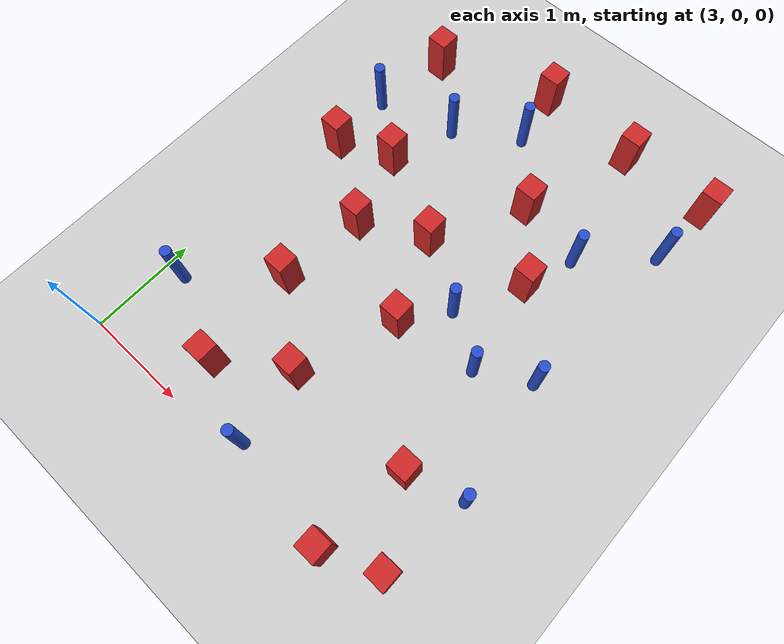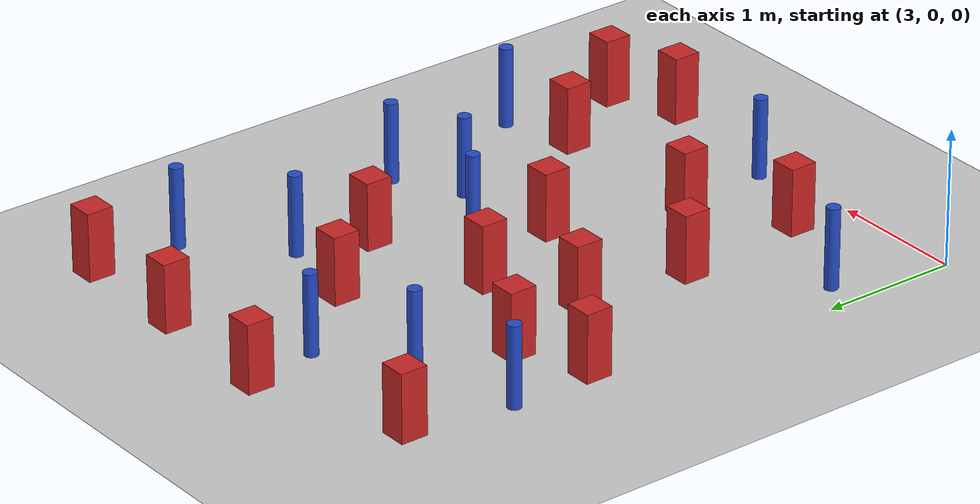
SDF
<sdf version="1.6">
 <world name="default">
  <model name="ground_plane">
   <static>1</static>
   <link name="link">
    <collision name="collision">
     <geometry><plane><normal>0 0 1</normal><size>100 100</size></plane></geometry>
     <surface><friction><ode><mu>100</mu><mu2>50</mu2></ode></friction></surface>
    </collision>
    <visual name="visual">
     <cast_shadows>0</cast_shadows>
     <geometry><plane><normal>0 0 1</normal><size>100 100</size></plane></geometry>
     <material>
      <ambient>1.0 1.0 1.0 1.0</ambient>
      <diffuse>0.8 0.8 0.8 1.0</diffuse>
      <specular>0.01 0.01 0.01 1.000000</specular>
     </material>
    </visual>
   </link>
  </model>
  <model name="pole_obstacle5">
   <static>true</static>
   <pose>4.59534983263 4.0228984966 7.38925637345e-09 -8.47170692797e-08 1.24976764805e-08 -1.74513093031e-07</pose>
   <link name="link">
    <pose>0 0 0.3 0 -0 0</pose>
    <inertial>
     <mass>1</mass>
     <inertia><ixx>0.145833</ixx><ixy>0</ixy><ixz>0</ixz><iyy>0.145833</iyy><iyz>0</iyz><izz>0.125</izz></inertia>
    </inertial>
    <collision name="collision">
     <geometry><cylinder><radius>0.05</radius><length>.6</length></cylinder></geometry>
    </collision>
    <visual name="visual">
     <geometry><cylinder><radius>0.05</radius><length>.6</length></cylinder></geometry>
     <material>
      <script><name>Gazebo/Blue</name><uri>file://media/materials/scripts/gazebo.material</uri></script>
     </material>
    </visual>
   </link>
  </model>
  <model name="square_post_obstacle17">
   <static>true</static>
   <pose>5.48721667953 4.50802966469 1.91545236811e-07 -7.35059704564e-06 1.12565212e-07 2.39332434364e-05</pose>
   <link name="link">
    <pose>0 0 0.25 0 -0 0</pose>
    <inertial>
     <mass>100</mass>
     <inertia>
      <ixx>0.166667</ixx>
      <ixy>0</ixy>
      <ixz>0</ixz>
      <iyy>0.166667</iyy>
      <iyz>0</iyz>
      <izz>0.166667</izz>
     </inertia>
    </inertial>
    <collision name="collision"><geometry><box><size>.2 .2 .5</size></box></geometry></collision>
    <visual name="visual">
     <geometry><box><size>.2 .2 .5</size></box></geometry>
     <material>
      <script><name>Gazebo/Red</name><uri>file://media/materials/scripts/gazebo.material</uri></script>
     </material>
    </visual>
   </link>
  </model>
  <model name="square_post_obstacle18">
   <static>true</static>
   <pose>4.50338744561 4.55315479538 1.91545236811e-07 -7.35059704564e-06 1.12565212e-07 2.39332434364e-05</pose>
   <link name="link">
    <pose>0 0 0.25 0 -0 0</pose>
    <inertial>
     <mass>100</mass>
     <inertia>
      <ixx>0.166667</ixx>
      <ixy>0</ixy>
      <ixz>0</ixz>
      <iyy>0.166667</iyy>
      <iyz>0</iyz>
      <izz>0.166667</izz>
     </inertia>
    </inertial>
    <collision name="collision"><geometry><box><size>.2 .2 .5</size></box></geometry></collision>
    <visual name="visual">
     <geometry><box><size>.2 .2 .5</size></box></geometry>
     <material>
      <script><name>Gazebo/Red</name><uri>file://media/materials/scripts/gazebo.material</uri></script>
     </material>
    </visual>
   </link>
  </model>
  <model name="pole_obstacle74">
   <static>true</static>
   <pose>3.25864597976 3.4138214126 7.38925637345e-09 -8.47170692798e-08 1.24976764939e-08 -1.74513093025e-07</pose>
   <link name="link">
    <pose>0 0 0.3 0 -0 0</pose>
    <inertial>
     <mass>1</mass>
     <inertia><ixx>0.145833</ixx><ixy>0</ixy><ixz>0</ixz><iyy>0.145833</iyy><iyz>0</iyz><izz>0.125</izz></inertia>
    </inertial>
    <collision name="collision">
     <geometry><cylinder><radius>0.05</radius><length>.6</length></cylinder></geometry>
    </collision>
    <visual name="visual">
     <geometry><cylinder><radius>0.05</radius><length>.6</length></cylinder></geometry>
     <material>
      <script><name>Gazebo/Blue</name><uri>file://media/materials/scripts/gazebo.material</uri></script>
     </material>
    </visual>
   </link>
  </model>
  <model name="pole_obstacle83">
   <static>true</static>
   <pose>4.7419789741 0.147731783757 7.38925637345e-09 -8.47170692801e-08 1.24976765186e-08 -1.74513093012e-07</pose>
   <link name="link">
    <pose>0 0 0.3 0 -0 0</pose>
    <inertial>
     <mass>1</mass>
     <inertia><ixx>0.145833</ixx><ixy>0</ixy><ixz>0</ixz><iyy>0.145833</iyy><iyz>0</iyz><izz>0.125</izz></inertia>
    </inertial>
    <collision name="collision">
     <geometry><cylinder><radius>0.05</radius><length>.6</length></cylinder></geometry>
    </collision>
    <visual name="visual">
     <geometry><cylinder><radius>0.05</radius><length>.6</length></cylinder></geometry>
     <material>
      <script><name>Gazebo/Blue</name><uri>file://media/materials/scripts/gazebo.material</uri></script>
     </material>
    </visual>
   </link>
  </model>
  <model name="square_post_obstacle92">
   <static>true</static>
   <pose>5.8972531947 0.875745982359 1.91545236811e-07 -7.35059704564e-06 1.12565212e-07 2.39332434364e-05</pose>
   <link name="link">
    <pose>0 0 0.25 0 -0 0</pose>
    <inertial>
     <mass>100</mass>
     <inertia>
      <ixx>0.166667</ixx>
      <ixy>0</ixy>
      <ixz>0</ixz>
      <iyy>0.166667</iyy>
      <iyz>0</iyz>
      <izz>0.166667</izz>
     </inertia>
    </inertial>
    <collision name="collision"><geometry><box><size>.2 .2 .5</size></box></geometry></collision>
    <visual name="visual">
     <geometry><box><size>.2 .2 .5</size></box></geometry>
     <material>
      <script><name>Gazebo/Red</name><uri>file://media/materials/scripts/gazebo.material</uri></script>
     </material>
    </visual>
   </link>
  </model>
  <model name="pole_obstacle108">
   <static>true</static>
   <pose>6.33394868923 3.84851165685 7.38925637345e-09 -8.47170692798e-08 1.24976764937e-08 -1.74513093023e-07</pose>
   <link name="link">
    <pose>0 0 0.3 0 -0 0</pose>
    <inertial>
     <mass>1</mass>
     <inertia><ixx>0.145833</ixx><ixy>0</ixy><ixz>0</ixz><iyy>0.145833</iyy><iyz>0</iyz><izz>0.125</izz></inertia>
    </inertial>
    <collision name="collision">
     <geometry><cylinder><radius>0.05</radius><length>.6</length></cylinder></geometry>
    </collision>
    <visual name="visual">
     <geometry><cylinder><radius>0.05</radius><length>.6</length></cylinder></geometry>
     <material>
      <script><name>Gazebo/Blue</name><uri>file://media/materials/scripts/gazebo.material</uri></script>
     </material>
    </visual>
   </link>
  </model>
  <model name="square_post_obstacle97">
   <static>true</static>
   <pose>3.40601405111 4.16479973151 1.91545236811e-07 -7.35059704564e-06 1.12565212e-07 2.39332434364e-05</pose>
   <link name="link">
    <pose>0 0 0.25 0 -0 0</pose>
    <inertial>
     <mass>100</mass>
     <inertia>
      <ixx>0.166667</ixx>
      <ixy>0</ixy>
      <ixz>0</ixz>
      <iyy>0.166667</iyy>
      <iyz>0</iyz>
      <izz>0.166667</izz>
     </inertia>
    </inertial>
    <collision name="collision"><geometry><box><size>.2 .2 .5</size></box></geometry></collision>
    <visual name="visual">
     <geometry><box><size>.2 .2 .5</size></box></geometry>
     <material>
      <script><name>Gazebo/Red</name><uri>file://media/materials/scripts/gazebo.material</uri></script>
     </material>
    </visual>
   </link>
  </model>
  <model name="pole_obstacle118">
   <static>true</static>
   <pose>3.22946974129 0.804600885479 7.38925637345e-09 -8.471706928e-08 1.24976765177e-08 -1.74513093012e-07</pose>
   <link name="link">
    <pose>0 0 0.3 0 -0 0</pose>
    <inertial>
     <mass>1</mass>
     <inertia><ixx>0.145833</ixx><ixy>0</ixy><ixz>0</ixz><iyy>0.145833</iyy><iyz>0</iyz><izz>0.125</izz></inertia>
    </inertial>
    <collision name="collision">
     <geometry><cylinder><radius>0.05</radius><length>.6</length></cylinder></geometry>
    </collision>
    <visual name="visual">
     <geometry><cylinder><radius>0.05</radius><length>.6</length></cylinder></geometry>
     <material>
      <script><name>Gazebo/Blue</name><uri>file://media/materials/scripts/gazebo.material</uri></script>
     </material>
    </visual>
   </link>
  </model>
  <model name="square_post_obstacle106">
   <static>true</static>
   <pose>4.04915722472 2.25567903911 1.91545236811e-07 -7.35059704564e-06 1.12565212e-07 2.39332434364e-05</pose>
   <link name="link">
    <pose>0 0 0.25 0 -0 0</pose>
    <inertial>
     <mass>100</mass>
     <inertia>
      <ixx>0.166667</ixx>
      <ixy>0</ixy>
      <ixz>0</ixz>
      <iyy>0.166667</iyy>
      <iyz>0</iyz>
      <izz>0.166667</izz>
     </inertia>
    </inertial>
    <collision name="collision"><geometry><box><size>.2 .2 .5</size></box></geometry></collision>
    <visual name="visual">
     <geometry><box><size>.2 .2 .5</size></box></geometry>
     <material>
      <script><name>Gazebo/Red</name><uri>file://media/materials/scripts/gazebo.material</uri></script>
     </material>
    </visual>
   </link>
  </model>
  <model name="square_post_obstacle119">
   <static>true</static>
   <pose>4.65369916464 2.56672874274 1.91545236811e-07 -7.35059704564e-06 1.12565212e-07 2.39332434364e-05</pose>
   <link name="link">
    <pose>0 0 0.25 0 -0 0</pose>
    <inertial>
     <mass>100</mass>
     <inertia>
      <ixx>0.166667</ixx>
      <ixy>0</ixy>
      <ixz>0</ixz>
      <iyy>0.166667</iyy>
      <iyz>0</iyz>
      <izz>0.166667</izz>
     </inertia>
    </inertial>
    <collision name="collision"><geometry><box><size>.2 .2 .5</size></box></geometry></collision>
    <visual name="visual">
     <geometry><box><size>.2 .2 .5</size></box></geometry>
     <material>
      <script><name>Gazebo/Red</name><uri>file://media/materials/scripts/gazebo.material</uri></script>
     </material>
    </visual>
   </link>
  </model>
  <model name="square_post_obstacle125">
   <static>true</static>
   <pose>3.29780537342 2.77564226505 1.91545236811e-07 -7.35059704564e-06 1.12565212e-07 2.39332434364e-05</pose>
   <link name="link">
    <pose>0 0 0.25 0 -0 0</pose>
    <inertial>
     <mass>100</mass>
     <inertia>
      <ixx>0.166667</ixx>
      <ixy>0</ixy>
      <ixz>0</ixz>
      <iyy>0.166667</iyy>
      <iyz>0</iyz>
      <izz>0.166667</izz>
     </inertia>
    </inertial>
    <collision name="collision"><geometry><box><size>.2 .2 .5</size></box></geometry></collision>
    <visual name="visual">
     <geometry><box><size>.2 .2 .5</size></box></geometry>
     <material>
      <script><name>Gazebo/Red</name><uri>file://media/materials/scripts/gazebo.material</uri></script>
     </material>
    </visual>
   </link>
  </model>
  <model name="square_post_obstacle126">
   <static>true</static>
   <pose>4.97991618646 1.78618532741 1.91545236811e-07 -7.35059704564e-06 1.12565212e-07 2.39332434364e-05</pose>
   <link name="link">
    <pose>0 0 0.25 0 -0 0</pose>
    <inertial>
     <mass>100</mass>
     <inertia>
      <ixx>0.166667</ixx>
      <ixy>0</ixy>
      <ixz>0</ixz>
      <iyy>0.166667</iyy>
      <iyz>0</iyz>
      <izz>0.166667</izz>
     </inertia>
    </inertial>
    <collision name="collision"><geometry><box><size>.2 .2 .5</size></box></geometry></collision>
    <visual name="visual">
     <geometry><box><size>.2 .2 .5</size></box></geometry>
     <material>
      <script><name>Gazebo/Red</name><uri>file://media/materials/scripts/gazebo.material</uri></script>
     </material>
    </visual>
   </link>
  </model>
  <model name="square_post_obstacle137">
   <static>true</static>
   <pose>5.5967975614 2.80122132989 1.91545236811e-07 -7.35059704564e-06 1.12565212e-07 2.39332434364e-05</pose>
   <link name="link">
    <pose>0 0 0.25 0 -0 0</pose>
    <inertial>
     <mass>100</mass>
     <inertia>
      <ixx>0.166667</ixx>
      <ixy>0</ixy>
      <ixz>0</ixz>
      <iyy>0.166667</iyy>
      <iyz>0</iyz>
      <izz>0.166667</izz>
     </inertia>
    </inertial>
    <collision name="collision"><geometry><box><size>.2 .2 .5</size></box></geometry></collision>
    <visual name="visual">
     <geometry><box><size>.2 .2 .5</size></box></geometry>
     <material>
      <script><name>Gazebo/Red</name><uri>file://media/materials/scripts/gazebo.material</uri></script>
     </material>
    </visual>
   </link>
  </model>
  <model name="square_post_obstacle143">
   <static>true</static>
   <pose>3.81365416403 2.98487274988 1.91545236811e-07 -7.35059704564e-06 1.12565212e-07 2.39332434364e-05</pose>
   <link name="link">
    <pose>0 0 0.25 0 -0 0</pose>
    <inertial>
     <mass>100</mass>
     <inertia>
      <ixx>0.166667</ixx>
      <ixy>0</ixy>
      <ixz>0</ixz>
      <iyy>0.166667</iyy>
      <iyz>0</iyz>
      <izz>0.166667</izz>
     </inertia>
    </inertial>
    <collision name="collision"><geometry><box><size>.2 .2 .5</size></box></geometry></collision>
    <visual name="visual">
     <geometry><box><size>.2 .2 .5</size></box></geometry>
     <material>
      <script><name>Gazebo/Red</name><uri>file://media/materials/scripts/gazebo.material</uri></script>
     </material>
    </visual>
   </link>
  </model>
  <model name="square_post_obstacle146">
   <static>true</static>
   <pose>6.37122204208 4.49850939421 1.91545236811e-07 -7.35059704564e-06 1.12565212e-07 2.39332434364e-05</pose>
   <link name="link">
    <pose>0 0 0.25 0 -0 0</pose>
    <inertial>
     <mass>100</mass>
     <inertia>
      <ixx>0.166667</ixx>
      <ixy>0</ixy>
      <ixz>0</ixz>
      <iyy>0.166667</iyy>
      <iyz>0</iyz>
      <izz>0.166667</izz>
     </inertia>
    </inertial>
    <collision name="collision"><geometry><box><size>.2 .2 .5</size></box></geometry></collision>
    <visual name="visual">
     <geometry><box><size>.2 .2 .5</size></box></geometry>
     <material>
      <script><name>Gazebo/Red</name><uri>file://media/materials/scripts/gazebo.material</uri></script>
     </material>
    </visual>
   </link>
  </model>
  <model name="square_post_obstacle150">
   <static>true</static>
   <pose>3.95043258287 1.43204682193 1.91545236811e-07 -7.35059704564e-06 1.12565212e-07 2.39332434364e-05</pose>
   <link name="link">
    <pose>0 0 0.25 0 -0 0</pose>
    <inertial>
     <mass>100</mass>
     <inertia>
      <ixx>0.166667</ixx>
      <ixy>0</ixy>
      <ixz>0</ixz>
      <iyy>0.166667</iyy>
      <iyz>0</iyz>
      <izz>0.166667</izz>
     </inertia>
    </inertial>
    <collision name="collision"><geometry><box><size>.2 .2 .5</size></box></geometry></collision>
    <visual name="visual">
     <geometry><box><size>.2 .2 .5</size></box></geometry>
     <material>
      <script><name>Gazebo/Red</name><uri>file://media/materials/scripts/gazebo.material</uri></script>
     </material>
    </visual>
   </link>
  </model>
  <model name="pole_obstacle162">
   <static>true</static>
   <pose>5.75473876534 1.89596556359 7.38925637345e-09 -8.471706928e-08 1.24976765134e-08 -1.74513093015e-07</pose>
   <link name="link">
    <pose>0 0 0.3 0 -0 0</pose>
    <inertial>
     <mass>1</mass>
     <inertia><ixx>0.145833</ixx><ixy>0</ixy><ixz>0</ixz><iyy>0.145833</iyy><iyz>0</iyz><izz>0.125</izz></inertia>
    </inertial>
    <collision name="collision">
     <geometry><cylinder><radius>0.05</radius><length>.6</length></cylinder></geometry>
    </collision>
    <visual name="visual">
     <geometry><cylinder><radius>0.05</radius><length>.6</length></cylinder></geometry>
     <material>
      <script><name>Gazebo/Blue</name><uri>file://media/materials/scripts/gazebo.material</uri></script>
     </material>
    </visual>
   </link>
  </model>
  <model name="pole_obstacle166">
   <static>true</static>
   <pose>6.2240301219 2.15953577675 7.38925637345e-09 -8.47170692798e-08 1.24976764937e-08 -1.74513093023e-07</pose>
   <link name="link">
    <pose>0 0 0.3 0 -0 0</pose>
    <inertial>
     <mass>1</mass>
     <inertia><ixx>0.145833</ixx><ixy>0</ixy><ixz>0</ixz><iyy>0.145833</iyy><iyz>0</iyz><izz>0.125</izz></inertia>
    </inertial>
    <collision name="collision">
     <geometry><cylinder><radius>0.05</radius><length>.6</length></cylinder></geometry>
    </collision>
    <visual name="visual">
     <geometry><cylinder><radius>0.05</radius><length>.6</length></cylinder></geometry>
     <material>
      <script><name>Gazebo/Blue</name><uri>file://media/materials/scripts/gazebo.material</uri></script>
     </material>
    </visual>
   </link>
  </model>
  <model name="square_post_obstacle162">
   <static>true</static>
   <pose>4.02956686683 0.452294432995 1.91545236811e-07 -7.35059704564e-06 1.12565212e-07 2.39332434364e-05</pose>
   <link name="link">
    <pose>0 0 0.25 0 -0 0</pose>
    <inertial>
     <mass>100</mass>
     <inertia>
      <ixx>0.166667</ixx>
      <ixy>0</ixy>
      <ixz>0</ixz>
      <iyy>0.166667</iyy>
      <iyz>0</iyz>
      <izz>0.166667</izz>
     </inertia>
    </inertial>
    <collision name="collision"><geometry><box><size>.2 .2 .5</size></box></geometry></collision>
    <visual name="visual">
     <geometry><box><size>.2 .2 .5</size></box></geometry>
     <material>
      <script><name>Gazebo/Red</name><uri>file://media/materials/scripts/gazebo.material</uri></script>
     </material>
    </visual>
   </link>
  </model>
  <model name="square_post_obstacle166">
   <static>true</static>
   <pose>4.6520328491 0.865738830574 1.91545236811e-07 -7.35059704564e-06 1.12565212e-07 2.39332434364e-05</pose>
   <link name="link">
    <pose>0 0 0.25 0 -0 0</pose>
    <inertial>
     <mass>100</mass>
     <inertia>
      <ixx>0.166667</ixx>
      <ixy>0</ixy>
      <ixz>0</ixz>
      <iyy>0.166667</iyy>
      <iyz>0</iyz>
      <izz>0.166667</izz>
     </inertia>
    </inertial>
    <collision name="collision"><geometry><box><size>.2 .2 .5</size></box></geometry></collision>
    <visual name="visual">
     <geometry><box><size>.2 .2 .5</size></box></geometry>
     <material>
      <script><name>Gazebo/Red</name><uri>file://media/materials/scripts/gazebo.material</uri></script>
     </material>
    </visual>
   </link>
  </model>
  <model name="square_post_obstacle173">
   <static>true</static>
   <pose>5.11604501277 3.42457435987 1.91545236811e-07 -7.35059704564e-06 1.12565212e-07 2.39332434364e-05</pose>
   <link name="link">
    <pose>0 0 0.25 0 -0 0</pose>
    <inertial>
     <mass>100</mass>
     <inertia>
      <ixx>0.166667</ixx>
      <ixy>0</ixy>
      <ixz>0</ixz>
      <iyy>0.166667</iyy>
      <iyz>0</iyz>
      <izz>0.166667</izz>
     </inertia>
    </inertial>
    <collision name="collision"><geometry><box><size>.2 .2 .5</size></box></geometry></collision>
    <visual name="visual">
     <geometry><box><size>.2 .2 .5</size></box></geometry>
     <material>
      <script><name>Gazebo/Red</name><uri>file://media/materials/scripts/gazebo.material</uri></script>
     </material>
    </visual>
   </link>
  </model>
  <model name="square_post_obstacle181">
   <static>true</static>
   <pose>5.79220055802 0.00360277084862 1.91545236811e-07 -7.35059704564e-06 1.12565212e-07 2.39332434364e-05</pose>
   <link name="link">
    <pose>0 0 0.25 0 -0 0</pose>
    <inertial>
     <mass>100</mass>
     <inertia>
      <ixx>0.166667</ixx>
      <ixy>0</ixy>
      <ixz>0</ixz>
      <iyy>0.166667</iyy>
      <iyz>0</iyz>
      <izz>0.166667</izz>
     </inertia>
    </inertial>
    <collision name="collision"><geometry><box><size>.2 .2 .5</size></box></geometry></collision>
    <visual name="visual">
     <geometry><box><size>.2 .2 .5</size></box></geometry>
     <material>
      <script><name>Gazebo/Red</name><uri>file://media/materials/scripts/gazebo.material</uri></script>
     </material>
    </visual>
   </link>
  </model>
  <model name="square_post_obstacle195">
   <static>true</static>
   <pose>6.2981004983 0.208083434495 1.91545236811e-07 -7.35059704564e-06 1.12565212e-07 2.39332434364e-05</pose>
   <link name="link">
    <pose>0 0 0.25 0 -0 0</pose>
    <inertial>
     <mass>100</mass>
     <inertia>
      <ixx>0.166667</ixx>
      <ixy>0</ixy>
      <ixz>0</ixz>
      <iyy>0.166667</iyy>
      <iyz>0</iyz>
      <izz>0.166667</izz>
     </inertia>
    </inertial>
    <collision name="collision"><geometry><box><size>.2 .2 .5</size></box></geometry></collision>
    <visual name="visual">
     <geometry><box><size>.2 .2 .5</size></box></geometry>
     <material>
      <script><name>Gazebo/Red</name><uri>file://media/materials/scripts/gazebo.material</uri></script>
     </material>
    </visual>
   </link>
  </model>
  <model name="pole_obstacle190">
   <static>true</static>
   <pose>5.7612110127 3.29549941021 7.38925637345e-09 -8.47170692798e-08 1.24976764937e-08 -1.74513093023e-07</pose>
   <link name="link">
    <pose>0 0 0.3 0 -0 0</pose>
    <inertial>
     <mass>1</mass>
     <inertia><ixx>0.145833</ixx><ixy>0</ixy><ixz>0</ixz><iyy>0.145833</iyy><iyz>0</iyz><izz>0.125</izz></inertia>
    </inertial>
    <collision name="collision">
     <geometry><cylinder><radius>0.05</radius><length>.6</length></cylinder></geometry>
    </collision>
    <visual name="visual">
     <geometry><cylinder><radius>0.05</radius><length>.6</length></cylinder></geometry>
     <material>
      <script><name>Gazebo/Blue</name><uri>file://media/materials/scripts/gazebo.material</uri></script>
     </material>
    </visual>
   </link>
  </model>
  <model name="pole_obstacle213">
   <static>true</static>
   <pose>6.41644000957 1.02647002078 7.38925637345e-09 -8.471706928e-08 1.24976765111e-08 -1.74513093015e-07</pose>
   <link name="link">
    <pose>0 0 0.3 0 -0 0</pose>
    <inertial>
     <mass>1</mass>
     <inertia><ixx>0.145833</ixx><ixy>0</ixy><ixz>0</ixz><iyy>0.145833</iyy><iyz>0</iyz><izz>0.125</izz></inertia>
    </inertial>
    <collision name="collision">
     <geometry><cylinder><radius>0.05</radius><length>.6</length></cylinder></geometry>
    </collision>
    <visual name="visual">
     <geometry><cylinder><radius>0.05</radius><length>.6</length></cylinder></geometry>
     <material>
      <script><name>Gazebo/Blue</name><uri>file://media/materials/scripts/gazebo.material</uri></script>
     </material>
    </visual>
   </link>
  </model>
  <model name="pole_obstacle215">
   <static>true</static>
   <pose>4.01254000957 3.62874002078 7.38925637345e-09 -8.47170692799e-08 1.24976765013e-08 -1.74513093021e-07</pose>
   <link name="link">
    <pose>0 0 0.3 0 -0 0</pose>
    <inertial>
     <mass>1</mass>
     <inertia><ixx>0.145833</ixx><ixy>0</ixy><ixz>0</ixz><iyy>0.145833</iyy><iyz>0</iyz><izz>0.125</izz></inertia>
    </inertial>
    <collision name="collision">
     <geometry><cylinder><radius>0.05</radius><length>.6</length></cylinder></geometry>
    </collision>
    <visual name="visual">
     <geometry><cylinder><radius>0.05</radius><length>.6</length></cylinder></geometry>
     <material>
      <script><name>Gazebo/Blue</name><uri>file://media/materials/scripts/gazebo.material</uri></script>
     </material>
    </visual>
   </link>
  </model>
  <model name="pole_obstacle227">
   <static>true</static>
   <pose>5.27244000957 2.19333002078 7.38925637345e-09 -8.47170692799e-08 1.24976765028e-08 -1.74513093019e-07</pose>
   <link name="link">
    <pose>0 0 0.3 0 -0 0</pose>
    <inertial>
     <mass>1</mass>
     <inertia><ixx>0.145833</ixx><ixy>0</ixy><ixz>0</ixz><iyy>0.145833</iyy><iyz>0</iyz><izz>0.125</izz></inertia>
    </inertial>
    <collision name="collision">
     <geometry><cylinder><radius>0.05</radius><length>.6</length></cylinder></geometry>
    </collision>
    <visual name="visual">
     <geometry><cylinder><radius>0.05</radius><length>.6</length></cylinder></geometry>
     <material>
      <script><name>Gazebo/Blue</name><uri>file://media/materials/scripts/gazebo.material</uri></script>
     </material>
    </visual>
   </link>
  </model>
 </world>
</sdf>
